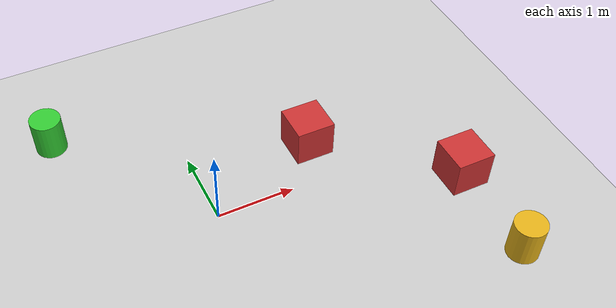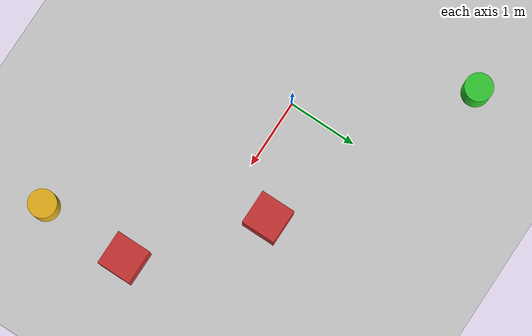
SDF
<?xml version="1.0" ?>
<!--
  OBS-3 Scenario: MIXED (Static + Dynamic)
  Two fixed box obstacles narrow the corridor; two dynamic cylinders
  cross the robot's path simultaneously. Most challenging scenario.
-->
<sdf version="1.6">
  <world name="mixed_obstacles">

    <physics type="ode">
      <real_time_update_rate>1000.0</real_time_update_rate>
      <max_step_size>0.001</max_step_size>
      <real_time_factor>1.0</real_time_factor>
    </physics>

    <include><uri>model://sun</uri></include>
    <include><uri>model://ground_plane</uri></include>

    <!-- Static obstacle 1 — red box -->
    <model name="static_obs_1">
      <static>true</static>
      <pose>1.5 0.6 0.25 0 0 0</pose>
      <link name="link">
        <collision name="c">
          <geometry><box><size>0.5 0.5 0.5</size></box></geometry>
        </collision>
        <visual name="v">
          <geometry><box><size>0.5 0.5 0.5</size></box></geometry>
          <material><ambient>0.8 0.2 0.2 1</ambient></material>
        </visual>
      </link>
    </model>

    <!-- Static obstacle 2 — red box -->
    <model name="static_obs_2">
      <static>true</static>
      <pose>3.0 -0.7 0.25 0 0 0</pose>
      <link name="link">
        <collision name="c">
          <geometry><box><size>0.5 0.5 0.5</size></box></geometry>
        </collision>
        <visual name="v">
          <geometry><box><size>0.5 0.5 0.5</size></box></geometry>
          <material><ambient>0.8 0.2 0.2 1</ambient></material>
        </visual>
      </link>
    </model>

    <!-- Dynamic obstacle 1 — green cylinder -->
    <model name="dyn_obs_1">
      <static>false</static>
      <pose>-1.5 2.0 0.25 0 0 0</pose>
      <link name="link">
        <inertial><mass>1.0</mass></inertial>
        <collision name="c">
          <geometry>
            <cylinder><radius>0.2</radius><length>0.5</length></cylinder>
          </geometry>
        </collision>
        <visual name="v">
          <geometry>
            <cylinder><radius>0.2</radius><length>0.5</length></cylinder>
          </geometry>
          <material><ambient>0.2 0.8 0.2 1</ambient></material>
        </visual>
      </link>
    </model>

    <!-- Dynamic obstacle 2 — yellow cylinder -->
    <model name="dyn_obs_2">
      <static>false</static>
      <pose>3.0 -2.0 0.25 0 0 0</pose>
      <link name="link">
        <inertial><mass>1.0</mass></inertial>
        <collision name="c">
          <geometry>
            <cylinder><radius>0.2</radius><length>0.5</length></cylinder>
          </geometry>
        </collision>
        <visual name="v">
          <geometry>
            <cylinder><radius>0.2</radius><length>0.5</length></cylinder>
          </geometry>
          <material><ambient>0.9 0.7 0.1 1</ambient></material>
        </visual>
      </link>
    </model>

  </world>
</sdf>
